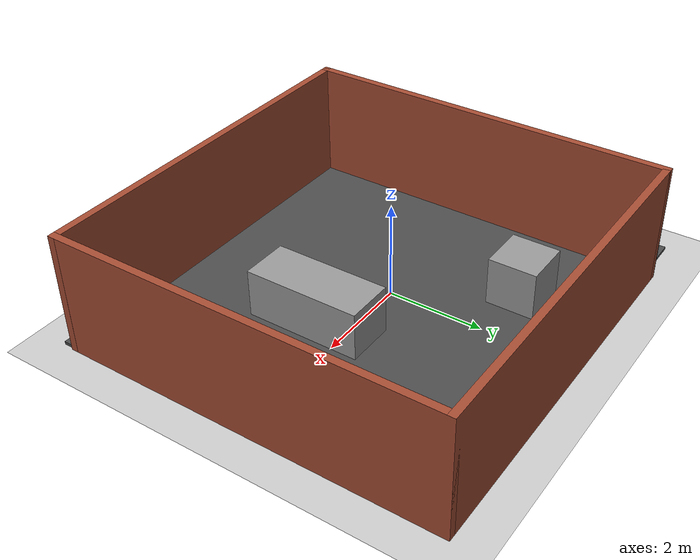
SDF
<sdf version="1.6">
 <world name="default">
  <light name="sun" type="directional">
   <pose>0 0 10 0 -0 0</pose>
   <diffuse>0.8 0.8 0.8 1</diffuse>
   <specular>0.2 0.2 0.2 1</specular>
   <attenuation>
    <range>1000</range>
    <constant>0.9</constant>
    <linear>0.01</linear>
    <quadratic>0.001</quadratic>
   </attenuation>
   <direction>-0.5 0.1 -0.9</direction>
  </light>
  <model name="ground_plane">
   <static>1</static>
   <link name="link">
    <collision name="collision">
     <geometry><plane><normal>0 0 1</normal><size>100 100</size></plane></geometry>
     <surface><friction><ode><mu>100</mu><mu2>50</mu2></ode></friction></surface>
    </collision>
    <visual name="visual">
     <cast_shadows>0</cast_shadows>
     <geometry><plane><normal>0 0 1</normal><size>100 100</size></plane></geometry>
     <material>
      <script><uri>file://media/materials/scripts/gazebo.material</uri><name>Gazebo/Grey</name></script>
     </material>
    </visual>
   </link>
  </model>
  <gravity>0 0 -9.8</gravity>
  <magnetic_field>6e-06 2.3e-05 -4.2e-05</magnetic_field>
  <atmosphere type="adiabatic"/>
  <physics name="default_physics" default="0" type="ode">
   <max_step_size>0.001</max_step_size>
   <real_time_factor>1</real_time_factor>
   <real_time_update_rate>1000</real_time_update_rate>
  </physics>
  <scene><ambient>0.4 0.4 0.4 1</ambient><background>0.7 0.7 0.7 1</background><shadows>1</shadows></scene>
  <audio><device>default</device></audio>
  <spherical_coordinates>
   <surface_model>EARTH_WGS84</surface_model>
   <latitude_deg>0</latitude_deg>
   <longitude_deg>0</longitude_deg>
   <elevation>0</elevation>
   <heading_deg>0</heading_deg>
  </spherical_coordinates>
  <model name="dzy1">
   <pose>0.637946 0.07493 0 0 -0 0</pose>
   <link name="Wall_0">
    <collision name="Wall_0_Collision">
     <geometry><box><size>8 0.15 2.5</size></box></geometry>
     <pose>0 0 1.25 0 -0 0</pose>
    </collision>
    <visual name="Wall_0_Visual">
     <pose>0 0 1.25 0 -0 0</pose>
     <geometry><box><size>8 0.15 2.5</size></box></geometry>
     <material>
      <script><uri>file://media/materials/scripts/gazebo.material</uri><name>Gazebo/Bricks</name></script>
      <ambient>1 1 1 1</ambient>
     </material>
     <meta><layer>0</layer></meta>
    </visual>
    <pose>0 3.925 0 0 -0 0</pose>
   </link>
   <link name="Wall_6">
    <collision name="Wall_6_Collision">
     <geometry><box><size>8 0.15 2.5</size></box></geometry>
     <pose>0 0 1.25 0 -0 0</pose>
    </collision>
    <visual name="Wall_6_Visual">
     <pose>0 0 1.25 0 -0 0</pose>
     <geometry><box><size>8 0.15 2.5</size></box></geometry>
     <material>
      <script><uri>file://media/materials/scripts/gazebo.material</uri><name>Gazebo/Bricks</name></script>
      <ambient>1 1 1 1</ambient>
     </material>
     <meta><layer>0</layer></meta>
    </visual>
    <pose>3.925 0 0 0 -0 -1.5708</pose>
   </link>
   <link name="Wall_7">
    <collision name="Wall_7_Collision">
     <geometry><box><size>8 0.15 2.5</size></box></geometry>
     <pose>0 0 1.25 0 -0 0</pose>
    </collision>
    <visual name="Wall_7_Visual">
     <pose>0 0 1.25 0 -0 0</pose>
     <geometry><box><size>8 0.15 2.5</size></box></geometry>
     <material>
      <script><uri>file://media/materials/scripts/gazebo.material</uri><name>Gazebo/Bricks</name></script>
      <ambient>1 1 1 1</ambient>
     </material>
     <meta><layer>0</layer></meta>
    </visual>
    <pose>0 -3.925 0 0 -0 3.14159</pose>
   </link>
   <link name="Wall_8">
    <collision name="Wall_8_Collision">
     <geometry><box><size>8 0.15 2.5</size></box></geometry>
     <pose>0 0 1.25 0 -0 0</pose>
    </collision>
    <visual name="Wall_8_Visual">
     <pose>0 0 1.25 0 -0 0</pose>
     <geometry><box><size>8 0.15 2.5</size></box></geometry>
     <material>
      <script><uri>file://media/materials/scripts/gazebo.material</uri><name>Gazebo/Bricks</name></script>
      <ambient>1 1 1 1</ambient>
     </material>
     <meta><layer>0</layer></meta>
    </visual>
    <pose>-3.925 0 0 0 -0 1.5708</pose>
   </link>
   <static>1</static>
  </model>
  <model name="asphalt_plane">
   <static>1</static>
   <link name="link">
    <collision name="collision"><geometry><box><size>9.00416 8.0679 0.1</size></box></geometry></collision>
    <visual name="visual">
     <cast_shadows>0</cast_shadows>
     <geometry><box><size>9.00416 8.0679 0.1</size></box></geometry>
     <material>
      <script>
       <uri>model://asphalt_plane/materials/scripts</uri>
       <uri>model://asphalt_plane/materials/textures</uri>
       <name>vrc/asphalt</name>
      </script>
     </material>
    </visual>
   </link>
   <pose>0.09107 -0.123014 0 0 -0 0</pose>
  </model>
  <model name="unit_box_0">
   <pose>-1.22794 2.20456 0.55 0 -0 1.9e-05</pose>
   <link name="link">
    <inertial>
     <mass>1</mass>
     <inertia>
      <ixx>0.166667</ixx>
      <ixy>0</ixy>
      <ixz>0</ixz>
      <iyy>0.166667</iyy>
      <iyz>0</iyz>
      <izz>0.166667</izz>
     </inertia>
    </inertial>
    <collision name="collision"><geometry><box><size>1 1 1</size></box></geometry></collision>
    <visual name="visual">
     <geometry><box><size>1 1 1</size></box></geometry>
     <material>
      <script><name>Gazebo/Grey</name><uri>file://media/materials/scripts/gazebo.material</uri></script>
     </material>
    </visual>
   </link>
  </model>
  <model name="unit_box_1">
   <pose>1.57209 -0.618895 0.549995 -0 9e-06 0.000162</pose>
   <link name="link">
    <inertial>
     <mass>1</mass>
     <inertia>
      <ixx>0.166667</ixx>
      <ixy>0</ixy>
      <ixz>0</ixz>
      <iyy>0.166667</iyy>
      <iyz>0</iyz>
      <izz>0.166667</izz>
     </inertia>
    </inertial>
    <collision name="collision"><geometry><box><size>1 2.40584 1</size></box></geometry></collision>
    <visual name="visual">
     <geometry><box><size>1 2.40584 1</size></box></geometry>
     <material>
      <script><name>Gazebo/Grey</name><uri>file://media/materials/scripts/gazebo.material</uri></script>
     </material>
    </visual>
   </link>
  </model>
 </world>
</sdf>
